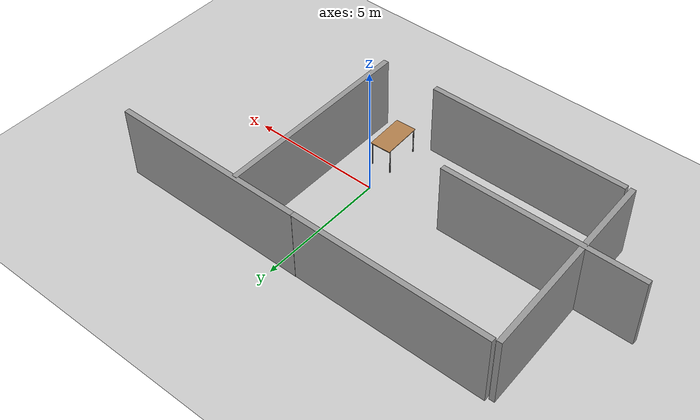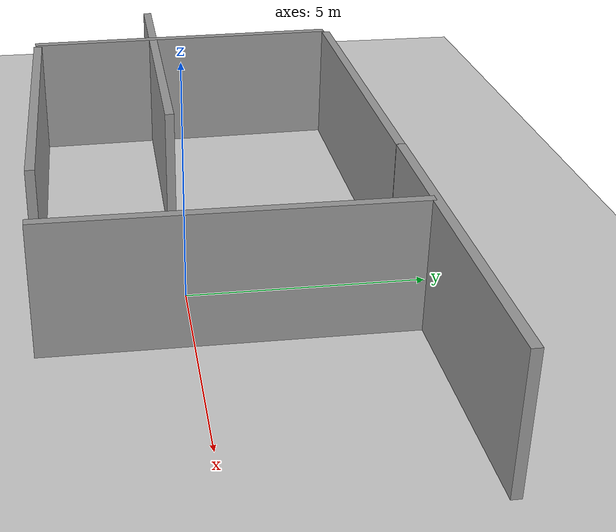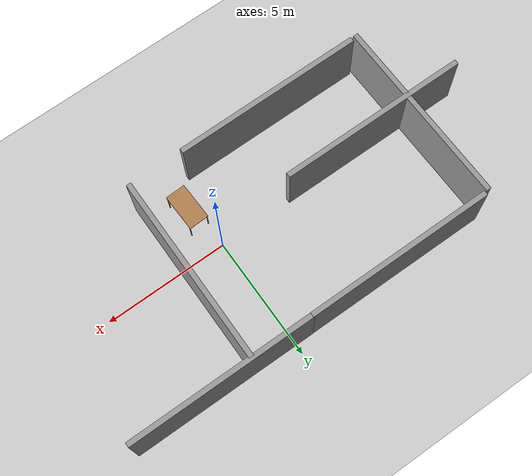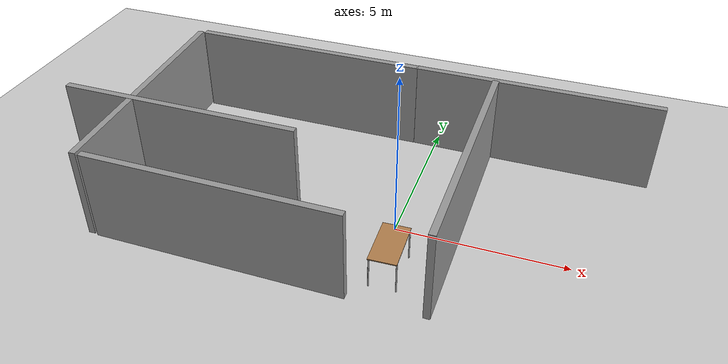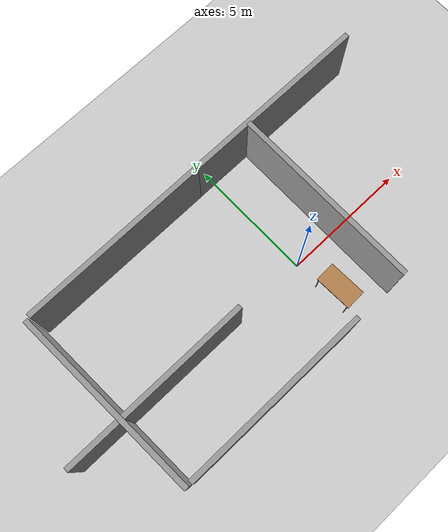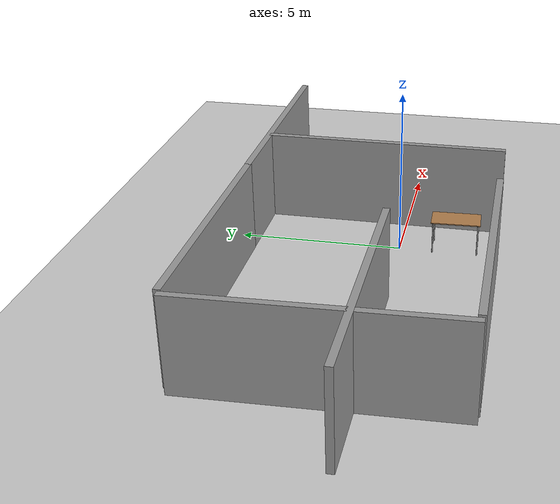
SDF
<sdf version="1.4">
 <world name="default">
  <light name="sun" type="directional">
   <pose>0 0 10 0 -0 0</pose>
   <diffuse>0.8 0.8 0.8 1</diffuse>
   <specular>0.2 0.2 0.2 1</specular>
   <attenuation>
    <range>1000</range>
    <constant>0.9</constant>
    <linear>0.01</linear>
    <quadratic>0.001</quadratic>
   </attenuation>
   <direction>-0.5 0.1 -0.9</direction>
  </light>
  <light name="user_point_light_0" type="point">
   <cast_shadows>0</cast_shadows>
   <pose>-10 -6 1 0 -0 0</pose>
   <diffuse>0.5 0.5 0.5 1</diffuse>
   <specular>0.1 0.1 0.1 1</specular>
   <attenuation>
    <range>20</range>
    <constant>0.5</constant>
    <linear>0.01</linear>
    <quadratic>0</quadratic>
   </attenuation>
   <direction>0 0 -1</direction>
  </light>
  <light name="user_point_light_1" type="point">
   <cast_shadows>0</cast_shadows>
   <pose>5 9 1 0 -0 0</pose>
   <diffuse>0.5 0.5 0.5 1</diffuse>
   <specular>0.1 0.1 0.1 1</specular>
   <attenuation>
    <range>20</range>
    <constant>0.5</constant>
    <linear>0.01</linear>
    <quadratic>0</quadratic>
   </attenuation>
   <direction>0 0 -1</direction>
  </light>
  <model name="ground_plane">
   <static>1</static>
   <link name="link">
    <collision name="collision">
     <geometry><plane><normal>0 0 1</normal><size>100 100</size></plane></geometry>
     <surface><friction><ode><mu>100</mu><mu2>50</mu2></ode></friction></surface>
    </collision>
    <visual name="visual">
     <cast_shadows>0</cast_shadows>
     <geometry><plane><normal>0 0 1</normal><size>100 100</size></plane></geometry>
     <material>
      <script><uri>file://media/materials/scripts/gazebo.material</uri><name>Gazebo/Grey</name></script>
     </material>
    </visual>
    <velocity_decay><linear>0</linear><angular>0</angular></velocity_decay>
   </link>
  </model>
  <physics type="ode">
   <max_step_size>0.001</max_step_size>
   <real_time_factor>1</real_time_factor>
   <real_time_update_rate>1000</real_time_update_rate>
   <gravity>0 0 -9.8</gravity>
  </physics>
  <scene><ambient>0.4 0.4 0.4 1</ambient><background>0.7 0.7 0.7 1</background><shadows>1</shadows></scene>
  <spherical_coordinates>
   <surface_model>EARTH_WGS84</surface_model>
   <latitude_deg>0</latitude_deg>
   <longitude_deg>0</longitude_deg>
   <elevation>0</elevation>
   <heading_deg>0</heading_deg>
  </spherical_coordinates>
  <model name="grey_wall">
   <static>1</static>
   <link name="link">
    <pose>0 0 1.4 0 -0 0</pose>
    <collision name="collision"><geometry><box><size>7.5 0.2 2.8</size></box></geometry></collision>
    <visual name="visual">
     <cast_shadows>0</cast_shadows>
     <geometry><box><size>7.5 0.2 2.8</size></box></geometry>
     <material>
      <script>
       <uri>model://grey_wall/materials/scripts</uri>
       <uri>model://grey_wall/materials/textures</uri>
       <name>vrc/grey_wall</name>
      </script>
     </material>
    </visual>
    <velocity_decay><linear>0</linear><angular>0</angular></velocity_decay>
   </link>
   <pose>-4.45669 4.51369 0 0 -0 0</pose>
  </model>
  <model name="grey_wall_0">
   <static>1</static>
   <link name="link">
    <pose>0 0 1.4 0 -0 0</pose>
    <collision name="collision"><geometry><box><size>7.5 0.2 2.8</size></box></geometry></collision>
    <visual name="visual">
     <cast_shadows>0</cast_shadows>
     <geometry><box><size>7.5 0.2 2.8</size></box></geometry>
     <material>
      <script>
       <uri>model://grey_wall/materials/scripts</uri>
       <uri>model://grey_wall/materials/textures</uri>
       <name>vrc/grey_wall</name>
      </script>
     </material>
    </visual>
    <velocity_decay><linear>0</linear><angular>0</angular></velocity_decay>
   </link>
   <pose>-4.17438 -2.94975 0 0 -0 0</pose>
  </model>
  <model name="grey_wall_1">
   <static>1</static>
   <link name="link">
    <pose>0 0 1.4 0 -0 0</pose>
    <collision name="collision"><geometry><box><size>7.5 0.2 2.8</size></box></geometry></collision>
    <visual name="visual">
     <cast_shadows>0</cast_shadows>
     <geometry><box><size>7.5 0.2 2.8</size></box></geometry>
     <material>
      <script>
       <uri>model://grey_wall/materials/scripts</uri>
       <uri>model://grey_wall/materials/textures</uri>
       <name>vrc/grey_wall</name>
      </script>
     </material>
    </visual>
    <velocity_decay><linear>0</linear><angular>0</angular></velocity_decay>
   </link>
   <pose>-8.24091 0.730795 0 0 0 -1.53854</pose>
  </model>
  <model name="grey_wall_3">
   <static>1</static>
   <link name="link">
    <pose>0 0 1.4 0 -0 0</pose>
    <collision name="collision"><geometry><box><size>7.5 0.2 2.8</size></box></geometry></collision>
    <visual name="visual">
     <cast_shadows>0</cast_shadows>
     <geometry><box><size>7.5 0.2 2.8</size></box></geometry>
     <material>
      <script>
       <uri>model://grey_wall/materials/scripts</uri>
       <uri>model://grey_wall/materials/textures</uri>
       <name>vrc/grey_wall</name>
      </script>
     </material>
    </visual>
    <velocity_decay><linear>0</linear><angular>0</angular></velocity_decay>
   </link>
   <pose>1.76758 0.74778 0.00212 0 0 -1.57102</pose>
  </model>
  <model name="grey_wall_4">
   <static>1</static>
   <link name="link">
    <pose>0 0 1.4 0 -0 0</pose>
    <collision name="collision"><geometry><box><size>7.5 0.2 2.8</size></box></geometry></collision>
    <visual name="visual">
     <cast_shadows>0</cast_shadows>
     <geometry><box><size>7.5 0.2 2.8</size></box></geometry>
     <material>
      <script>
       <uri>model://grey_wall/materials/scripts</uri>
       <uri>model://grey_wall/materials/textures</uri>
       <name>vrc/grey_wall</name>
      </script>
     </material>
    </visual>
    <velocity_decay><linear>0</linear><angular>0</angular></velocity_decay>
   </link>
   <pose>-6.71122 -0.025606 0 0 -0 0</pose>
  </model>
  <model name="grey_wall_6">
   <static>1</static>
   <link name="link">
    <pose>0 0 1.4 0 -0 0</pose>
    <collision name="collision"><geometry><box><size>7.5 0.2 2.8</size></box></geometry></collision>
    <visual name="visual">
     <cast_shadows>0</cast_shadows>
     <geometry><box><size>7.5 0.2 2.8</size></box></geometry>
     <material>
      <script>
       <uri>model://grey_wall/materials/scripts</uri>
       <uri>model://grey_wall/materials/textures</uri>
       <name>vrc/grey_wall</name>
      </script>
     </material>
    </visual>
    <velocity_decay><linear>0</linear><angular>0</angular></velocity_decay>
   </link>
   <pose>3 4.52028 0 0 -0 0</pose>
  </model>
  <model name="table">
   <static>1</static>
   <link name="link">
    <collision name="surface">
     <pose>0 0 1 0 -0 0</pose>
     <geometry><box><size>1.5 0.8 0.03</size></box></geometry>
     <surface><friction><ode><mu>0.6</mu><mu2>0.6</mu2></ode></friction></surface>
    </collision>
    <visual name="visual1">
     <pose>0 0 1 0 -0 0</pose>
     <geometry><box><size>1.5 0.8 0.03</size></box></geometry>
     <material>
      <script><uri>file://media/materials/scripts/gazebo.material</uri><name>Gazebo/Wood</name></script>
     </material>
    </visual>
    <collision name="front_left_leg">
     <pose>0.68 0.38 0.5 0 -0 0</pose>
     <geometry><cylinder><radius>0.02</radius><length>1</length></cylinder></geometry>
    </collision>
    <visual name="front_left_leg">
     <pose>0.68 0.38 0.5 0 -0 0</pose>
     <geometry><cylinder><radius>0.02</radius><length>1</length></cylinder></geometry>
     <material>
      <script><uri>file://media/materials/scripts/gazebo.material</uri><name>Gazebo/Grey</name></script>
     </material>
    </visual>
    <collision name="front_right_leg">
     <pose>0.68 -0.38 0.5 0 -0 0</pose>
     <geometry><cylinder><radius>0.02</radius><length>1</length></cylinder></geometry>
    </collision>
    <visual name="front_right_leg">
     <pose>0.68 -0.38 0.5 0 -0 0</pose>
     <geometry><cylinder><radius>0.02</radius><length>1</length></cylinder></geometry>
     <material>
      <script><uri>file://media/materials/scripts/gazebo.material</uri><name>Gazebo/Grey</name></script>
     </material>
    </visual>
    <collision name="back_right_leg">
     <pose>-0.68 -0.38 0.5 0 -0 0</pose>
     <geometry><cylinder><radius>0.02</radius><length>1</length></cylinder></geometry>
    </collision>
    <visual name="back_right_leg">
     <pose>-0.68 -0.38 0.5 0 -0 0</pose>
     <geometry><cylinder><radius>0.02</radius><length>1</length></cylinder></geometry>
     <material>
      <script><uri>file://media/materials/scripts/gazebo.material</uri><name>Gazebo/Grey</name></script>
     </material>
    </visual>
    <collision name="back_left_leg">
     <pose>-0.68 0.38 0.5 0 -0 0</pose>
     <geometry><cylinder><radius>0.02</radius><length>1</length></cylinder></geometry>
    </collision>
    <visual name="back_left_leg">
     <pose>-0.68 0.38 0.5 0 -0 0</pose>
     <geometry><cylinder><radius>0.02</radius><length>1</length></cylinder></geometry>
     <material>
      <script><uri>file://media/materials/scripts/gazebo.material</uri><name>Gazebo/Grey</name></script>
     </material>
    </visual>
    <velocity_decay><linear>0</linear><angular>0</angular></velocity_decay>
   </link>
   <pose>0.361141 -1.69258 0 0 0 -1.53468</pose>
  </model>
 </world>
</sdf>
